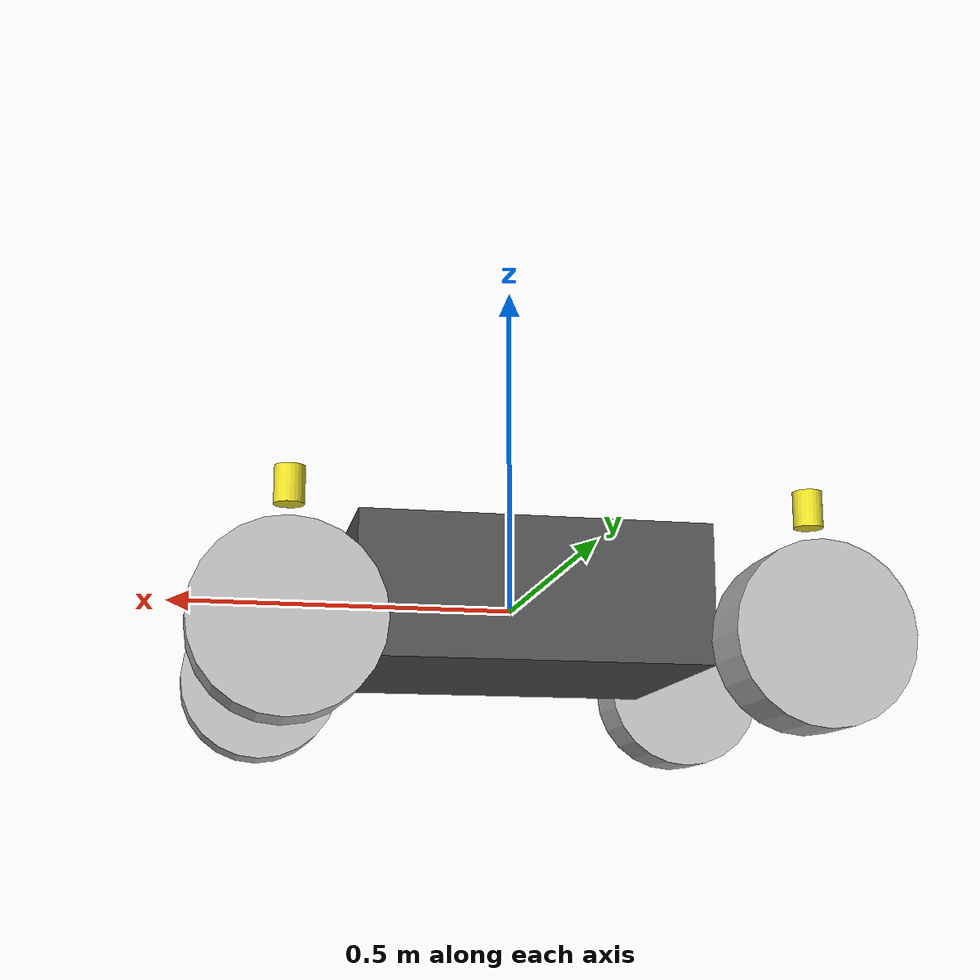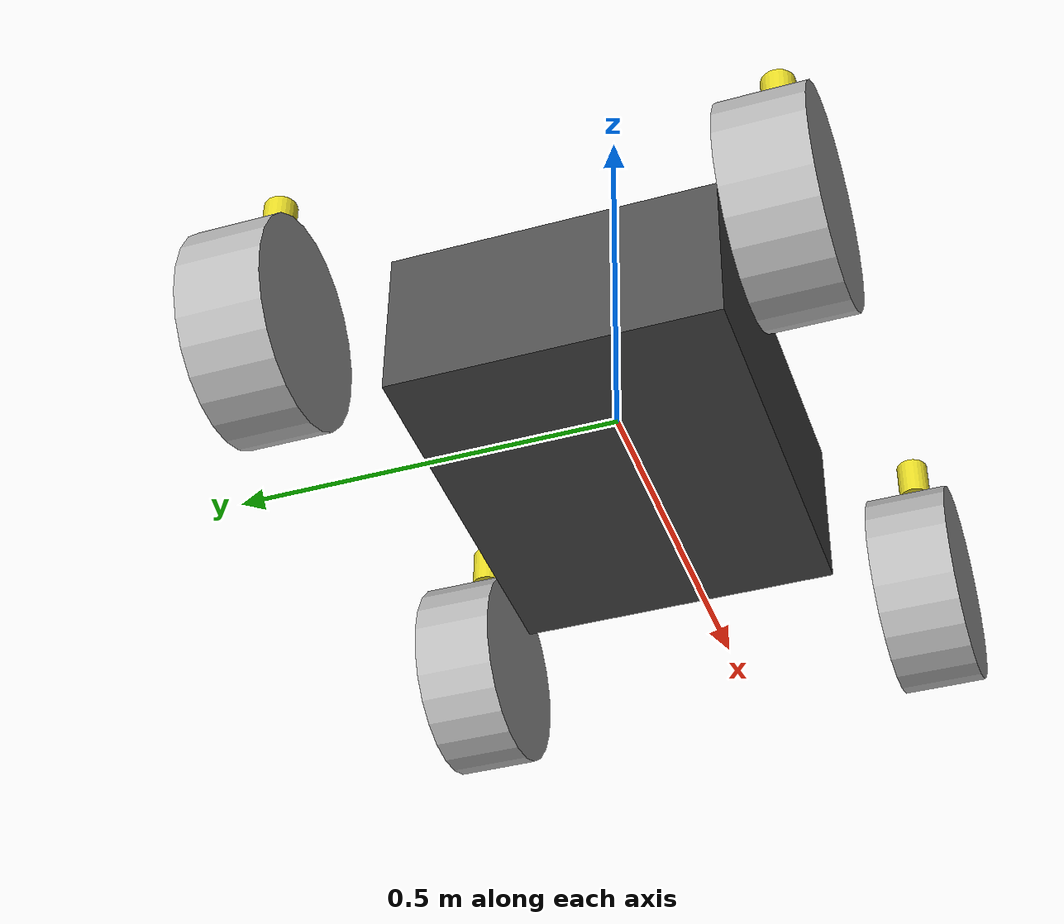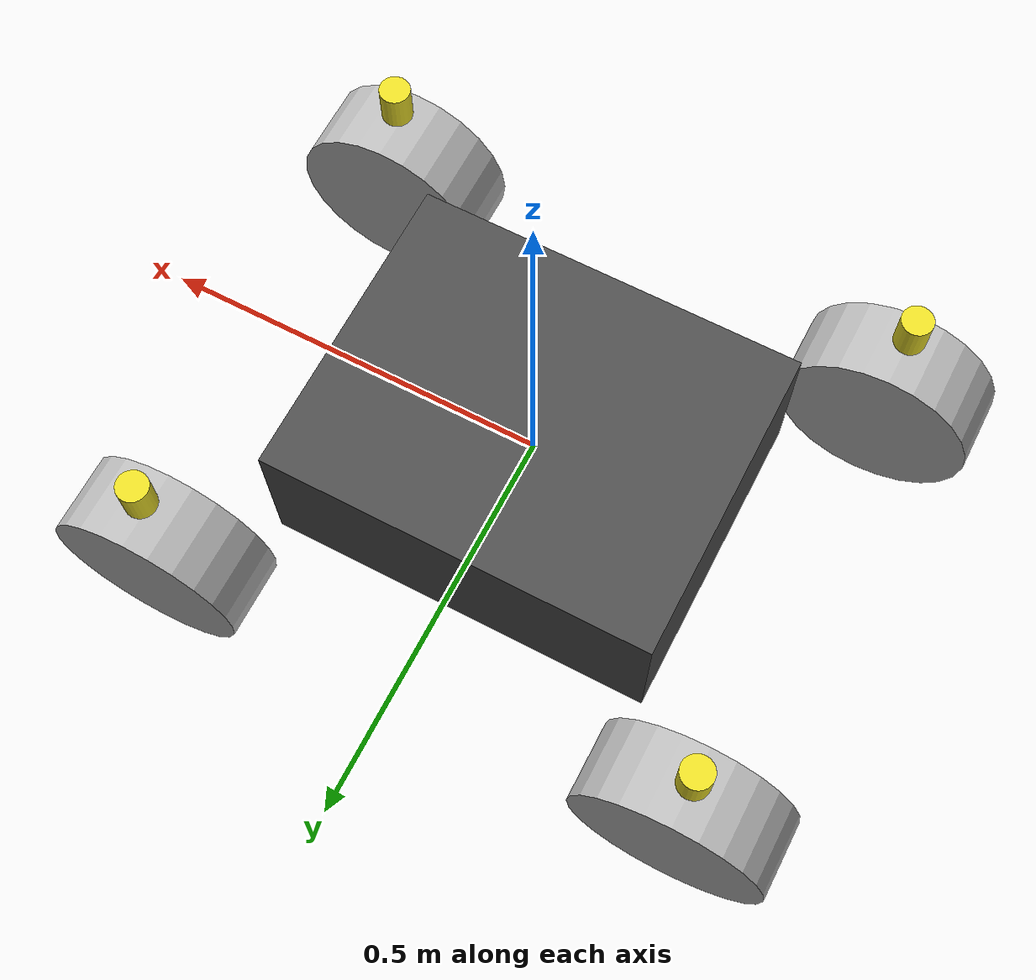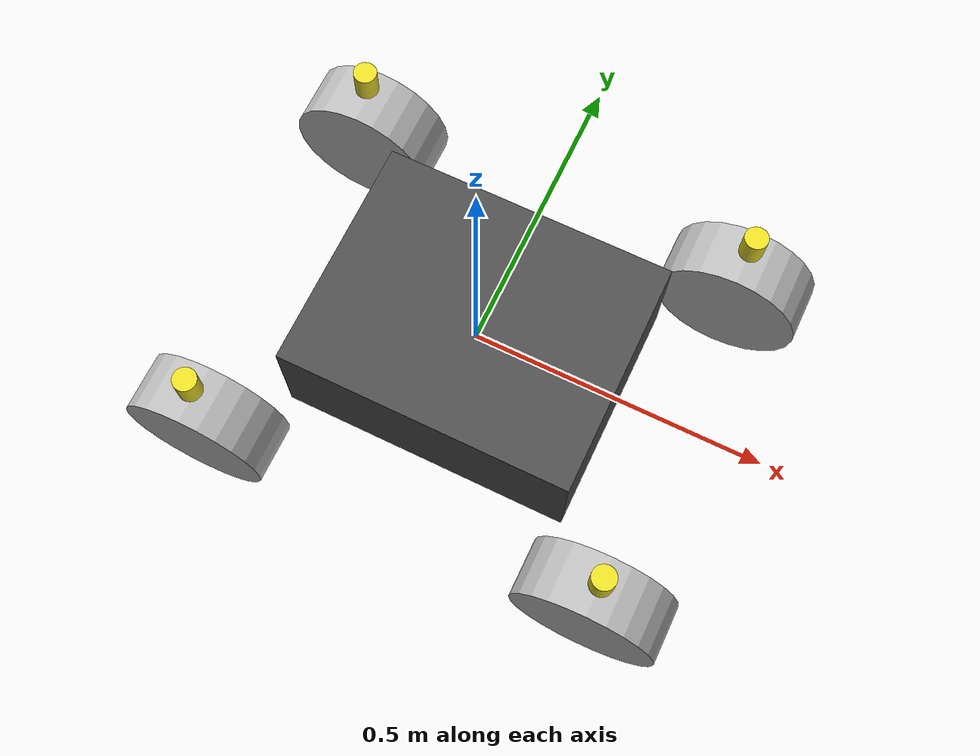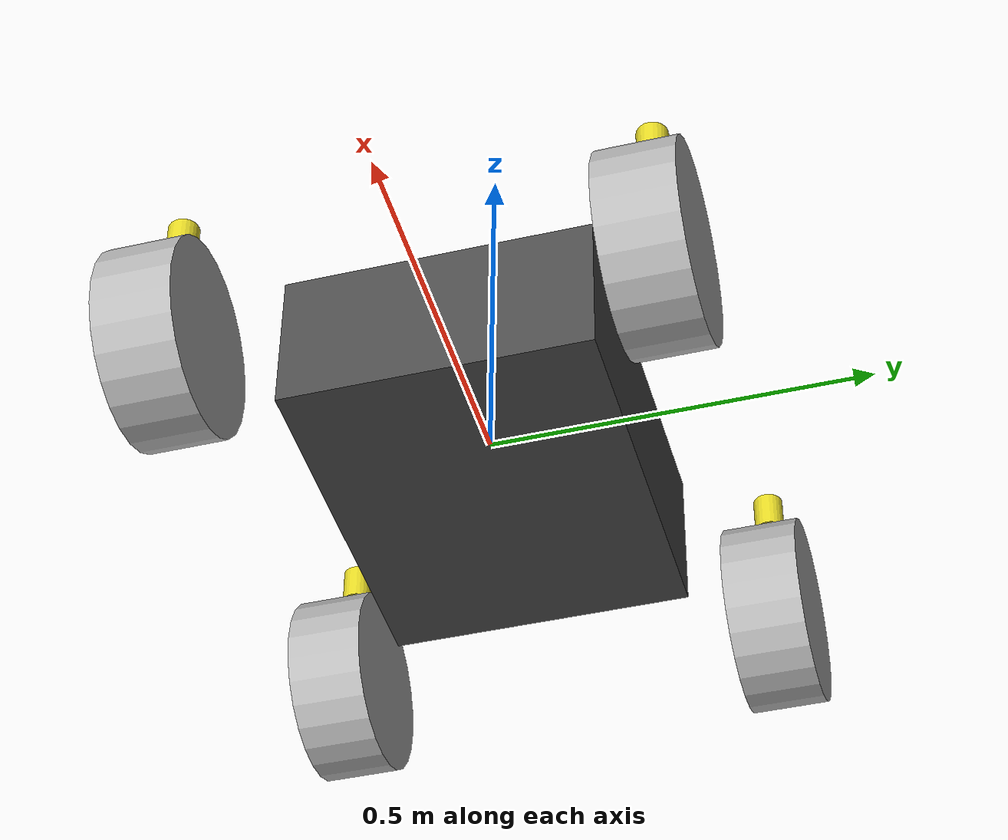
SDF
<sdf version='1.7'>
  <model name='jet_boat_proxy'>
    <link name='base_link'>
      <inertial>
        <pose>0 0 0 0 -0 0</pose>
        <mass>0.5</mass>
        <inertia>
          <ixx>0.00833333</ixx>
          <ixy>0</ixy>
          <ixz>0</ixz>
          <iyy>0.0120833</iyy>
          <iyz>0</iyz>
          <izz>0.0170833</izz>
        </inertia>
      </inertial>
      <collision name='base_link_collision'>
        <pose>0 0 0 0 -0 0</pose>
        <geometry>
          <box>
            <size>0.5 0.4 0.2</size>
          </box>
        </geometry>
        <surface>
          <friction>
            <ode>
              <mu2>1</mu2>
              <fdir1>1 0 0</fdir1>
              <mu1>1.0</mu1>
            </ode>
          </friction>
          <contact>
            <ode>
              <kp>1e+15</kp>
              <kd>1e+13</kd>
            </ode>
          </contact>
        </surface>
      </collision>
      <visual name='base_link_visual'>
        <pose>0 0 0 0 -0 0</pose>
        <geometry>
          <box>
            <size>0.5 0.4 0.2</size>
          </box>
        </geometry>
        <material>
          <script>
            <name>Gazebo/DarkGray</name>
            <uri>file://media/materials/scripts/gazebo.material</uri>
          </script>
        </material>
      </visual>
      <gravity>1</gravity>
      <velocity_decay/>
    </link>
    <joint name='back_left_steer_joint' type='revolute'>
      <pose relative_to='base_link'>-0.35 0.3 0.1 0 -0 0</pose>
      <parent>base_link</parent>
      <child>back_left_steer_link</child>
      <axis>
        <xyz>0 0 1</xyz>
        <limit>
          <lower>-0.785398</lower>
          <upper>0.785398</upper>
          <effort>100</effort>
          <velocity>0.5</velocity>
        </limit>
        <dynamics>
          <damping>0.01</damping>
          <friction>0.001</friction>
          <spring_reference>0</spring_reference>
          <spring_stiffness>0</spring_stiffness>
        </dynamics>
      </axis>
      <physics>
        <ode>
          <limit>
            <cfm>0</cfm>
            <erp>0.2</erp>
          </limit>
        </ode>
      </physics>
    </joint>
    <link name='back_left_steer_link'>
      <pose relative_to='back_left_steer_joint'>0 0 0 0 -0 0</pose>
      <inertial>
        <pose>0 0 0 0 -0 0</pose>
        <mass>0.1</mass>
        <inertia>
          <ixx>3.08333e-05</ixx>
          <ixy>0</ixy>
          <ixz>0</ixz>
          <iyy>3.08333e-05</iyy>
          <iyz>0</iyz>
          <izz>2e-05</izz>
        </inertia>
      </inertial>
      <collision name='back_left_steer_link_collision'>
        <pose>0 0 0 0 -0 0</pose>
        <geometry>
          <cylinder>
            <length>0.05</length>
            <radius>0.02</radius>
          </cylinder>
        </geometry>
        <surface>
          <friction>
            <ode>
              <mu2>1</mu2>
              <fdir1>1 0 0</fdir1>
              <mu1>1.0</mu1>
            </ode>
          </friction>
          <contact>
            <ode>
              <kp>1e+15</kp>
              <kd>1e+13</kd>
            </ode>
          </contact>
        </surface>
      </collision>
      <visual name='back_left_steer_link_visual'>
        <pose>0 0 0 0 -0 0</pose>
        <geometry>
          <cylinder>
            <length>0.05</length>
            <radius>0.02</radius>
          </cylinder>
        </geometry>
        <material>
          <script>
            <name>Gazebo/Yellow</name>
            <uri>file://media/materials/scripts/gazebo.material</uri>
          </script>
        </material>
      </visual>
      <gravity>1</gravity>
      <velocity_decay/>
    </link>
    <joint name='back_left_wheel_joint' type='revolute'>
      <pose relative_to='back_left_steer_link'>0 0 -0.175 -1.5708 0 0</pose>
      <parent>back_left_steer_link</parent>
      <child>back_left_wheel_link</child>
      <axis>
        <xyz>0 0 1</xyz>
        <limit>
          <lower>-1e+16</lower>
          <upper>1e+16</upper>
        </limit>
        <dynamics>
          <damping>0.01</damping>
          <friction>0.001</friction>
          <spring_reference>0</spring_reference>
          <spring_stiffness>0</spring_stiffness>
        </dynamics>
      </axis>
      <physics>
        <ode>
          <limit>
            <cfm>0</cfm>
            <erp>0.2</erp>
          </limit>
        </ode>
      </physics>
    </joint>
    <link name='back_left_wheel_link'>
      <pose relative_to='back_left_wheel_joint'>0 0 0 0 -0 0</pose>
      <inertial>
        <pose>0 0 0 0 -0 0</pose>
        <mass>0.1</mass>
        <inertia>
          <ixx>0.000473958</ixx>
          <ixy>0</ixy>
          <ixz>0</ixz>
          <iyy>0.000473958</iyy>
          <iyz>0</iyz>
          <izz>0.00078125</izz>
        </inertia>
      </inertial>
      <collision name='back_left_wheel_link_collision'>
        <pose>0 0 0 0 -0 0</pose>
        <geometry>
          <cylinder>
            <length>0.1</length>
            <radius>0.125</radius>
          </cylinder>
        </geometry>
      </collision>
      <visual name='back_left_wheel_link_visual'>
        <pose>0 0 0 0 -0 0</pose>
        <geometry>
          <cylinder>
            <length>0.1</length>
            <radius>0.125</radius>
          </cylinder>
        </geometry>
      </visual>
    </link>
    <joint name='back_right_steer_joint' type='revolute'>
      <pose relative_to='base_link'>-0.35 -0.3 0.1 0 -0 0</pose>
      <parent>base_link</parent>
      <child>back_right_steer_link</child>
      <axis>
        <xyz>0 0 1</xyz>
        <limit>
          <lower>-0.785398</lower>
          <upper>0.785398</upper>
          <effort>100</effort>
          <velocity>0.5</velocity>
        </limit>
        <dynamics>
          <damping>0.01</damping>
          <friction>0.001</friction>
          <spring_reference>0</spring_reference>
          <spring_stiffness>0</spring_stiffness>
        </dynamics>
      </axis>
      <physics>
        <ode>
          <limit>
            <cfm>0</cfm>
            <erp>0.2</erp>
          </limit>
        </ode>
      </physics>
    </joint>
    <link name='back_right_steer_link'>
      <pose relative_to='back_right_steer_joint'>0 0 0 0 -0 0</pose>
      <inertial>
        <pose>0 0 0 0 -0 0</pose>
        <mass>0.1</mass>
        <inertia>
          <ixx>3.08333e-05</ixx>
          <ixy>0</ixy>
          <ixz>0</ixz>
          <iyy>3.08333e-05</iyy>
          <iyz>0</iyz>
          <izz>2e-05</izz>
        </inertia>
      </inertial>
      <collision name='back_right_steer_link_collision'>
        <pose>0 0 0 0 -0 0</pose>
        <geometry>
          <cylinder>
            <length>0.05</length>
            <radius>0.02</radius>
          </cylinder>
        </geometry>
        <surface>
          <friction>
            <ode>
              <mu2>1</mu2>
              <fdir1>1 0 0</fdir1>
              <mu1>1.0</mu1>
            </ode>
          </friction>
          <contact>
            <ode>
              <kp>1e+15</kp>
              <kd>1e+13</kd>
            </ode>
          </contact>
        </surface>
      </collision>
      <visual name='back_right_steer_link_visual'>
        <pose>0 0 0 0 -0 0</pose>
        <geometry>
          <cylinder>
            <length>0.05</length>
            <radius>0.02</radius>
          </cylinder>
        </geometry>
        <material>
          <script>
            <name>Gazebo/Yellow</name>
            <uri>file://media/materials/scripts/gazebo.material</uri>
          </script>
        </material>
      </visual>
      <gravity>1</gravity>
      <velocity_decay/>
    </link>
    <joint name='back_right_wheel_joint' type='revolute'>
      <pose relative_to='back_right_steer_link'>0 0 -0.175 -1.5708 0 0</pose>
      <parent>back_right_steer_link</parent>
      <child>back_right_wheel_link</child>
      <axis>
        <xyz>0 0 1</xyz>
        <limit>
          <lower>-1e+16</lower>
          <upper>1e+16</upper>
        </limit>
        <dynamics>
          <damping>0.01</damping>
          <friction>0.001</friction>
          <spring_reference>0</spring_reference>
          <spring_stiffness>0</spring_stiffness>
        </dynamics>
      </axis>
      <physics>
        <ode>
          <limit>
            <cfm>0</cfm>
            <erp>0.2</erp>
          </limit>
        </ode>
      </physics>
    </joint>
    <link name='back_right_wheel_link'>
      <pose relative_to='back_right_wheel_joint'>0 0 0 0 -0 0</pose>
      <inertial>
        <pose>0 0 0 0 -0 0</pose>
        <mass>0.1</mass>
        <inertia>
          <ixx>0.000473958</ixx>
          <ixy>0</ixy>
          <ixz>0</ixz>
          <iyy>0.000473958</iyy>
          <iyz>0</iyz>
          <izz>0.00078125</izz>
        </inertia>
      </inertial>
      <collision name='back_right_wheel_link_collision'>
        <pose>0 0 0 0 -0 0</pose>
        <geometry>
          <cylinder>
            <length>0.1</length>
            <radius>0.125</radius>
          </cylinder>
        </geometry>
      </collision>
      <visual name='back_right_wheel_link_visual'>
        <pose>0 0 0 0 -0 0</pose>
        <geometry>
          <cylinder>
            <length>0.1</length>
            <radius>0.125</radius>
          </cylinder>
        </geometry>
      </visual>
    </link>
    <joint name='front_left_steer_joint' type='revolute'>
      <pose relative_to='base_link'>0.35 0.3 0.1 0 -0 0</pose>
      <parent>base_link</parent>
      <child>front_left_steer_link</child>
      <axis>
        <xyz>0 0 1</xyz>
        <limit>
          <lower>0</lower>
          <upper>3.14159</upper>
          <effort>100</effort>
          <velocity>0.5</velocity>
        </limit>
        <dynamics>
          <damping>0.01</damping>
          <friction>0.001</friction>
          <spring_reference>0</spring_reference>
          <spring_stiffness>0</spring_stiffness>
        </dynamics>
      </axis>
      <physics>
        <ode>
          <limit>
            <cfm>0</cfm>
            <erp>0.2</erp>
          </limit>
        </ode>
      </physics>
    </joint>
    <link name='front_left_steer_link'>
      <pose relative_to='front_left_steer_joint'>0 0 0 0 -0 0</pose>
      <inertial>
        <pose>0 0 0 0 -0 0</pose>
        <mass>0.1</mass>
        <inertia>
          <ixx>3.08333e-05</ixx>
          <ixy>0</ixy>
          <ixz>0</ixz>
          <iyy>3.08333e-05</iyy>
          <iyz>0</iyz>
          <izz>2e-05</izz>
        </inertia>
      </inertial>
      <collision name='front_left_steer_link_collision'>
        <pose>0 0 0 0 -0 0</pose>
        <geometry>
          <cylinder>
            <length>0.05</length>
            <radius>0.02</radius>
          </cylinder>
        </geometry>
        <surface>
          <friction>
            <ode>
              <mu2>1</mu2>
              <fdir1>1 0 0</fdir1>
              <mu1>1.0</mu1>
            </ode>
          </friction>
          <contact>
            <ode>
              <kp>1e+15</kp>
              <kd>1e+13</kd>
            </ode>
          </contact>
        </surface>
      </collision>
      <visual name='front_left_steer_link_visual'>
        <pose>0 0 0 0 -0 0</pose>
        <geometry>
          <cylinder>
            <length>0.05</length>
            <radius>0.02</radius>
          </cylinder>
        </geometry>
        <material>
          <script>
            <name>Gazebo/Yellow</name>
            <uri>file://media/materials/scripts/gazebo.material</uri>
          </script>
        </material>
      </visual>
      <gravity>1</gravity>
      <velocity_decay/>
    </link>
    <joint name='front_left_wheel_joint' type='revolute'>
      <pose relative_to='front_left_steer_link'>0 0 -0.175 -1.5708 0 0</pose>
      <parent>front_left_steer_link</parent>
      <child>front_left_wheel_link</child>
      <axis>
        <xyz>0 0 1</xyz>
        <limit>
          <lower>-1e+16</lower>
          <upper>1e+16</upper>
        </limit>
        <dynamics>
          <damping>0.01</damping>
          <friction>0.001</friction>
          <spring_reference>0</spring_reference>
          <spring_stiffness>0</spring_stiffness>
        </dynamics>
      </axis>
      <physics>
        <ode>
          <limit>
            <cfm>0</cfm>
            <erp>0.2</erp>
          </limit>
        </ode>
      </physics>
    </joint>
    <link name='front_left_wheel_link'>
      <pose relative_to='front_left_wheel_joint'>0 0 0 0 -0 0</pose>
      <inertial>
        <pose>0 0 0 0 -0 0</pose>
        <mass>0.1</mass>
        <inertia>
          <ixx>0.000473958</ixx>
          <ixy>0</ixy>
          <ixz>0</ixz>
          <iyy>0.000473958</iyy>
          <iyz>0</iyz>
          <izz>0.00078125</izz>
        </inertia>
      </inertial>
      <collision name='front_left_wheel_link_collision'>
        <pose>0 0 0 0 -0 0</pose>
        <geometry>
          <cylinder>
            <length>0.1</length>
            <radius>0.125</radius>
          </cylinder>
        </geometry>
      </collision>
      <visual name='front_left_wheel_link_visual'>
        <pose>0 0 0 0 -0 0</pose>
        <geometry>
          <cylinder>
            <length>0.1</length>
            <radius>0.125</radius>
          </cylinder>
        </geometry>
      </visual>
    </link>
    <joint name='front_right_steer_joint' type='revolute'>
      <pose relative_to='base_link'>0.35 -0.3 0.1 0 -0 0</pose>
      <parent>base_link</parent>
      <child>front_right_steer_link</child>
      <axis>
        <xyz>0 0 1</xyz>
        <limit>
          <lower>-3.14159</lower>
          <upper>0</upper>
          <effort>100</effort>
          <velocity>0.5</velocity>
        </limit>
        <dynamics>
          <damping>0.01</damping>
          <friction>0.001</friction>
          <spring_reference>0</spring_reference>
          <spring_stiffness>0</spring_stiffness>
        </dynamics>
      </axis>
      <physics>
        <ode>
          <limit>
            <cfm>0</cfm>
            <erp>0.2</erp>
          </limit>
        </ode>
      </physics>
    </joint>
    <link name='front_right_steer_link'>
      <pose relative_to='front_right_steer_joint'>0 0 0 0 -0 0</pose>
      <inertial>
        <pose>0 0 0 0 -0 0</pose>
        <mass>0.1</mass>
        <inertia>
          <ixx>3.08333e-05</ixx>
          <ixy>0</ixy>
          <ixz>0</ixz>
          <iyy>3.08333e-05</iyy>
          <iyz>0</iyz>
          <izz>2e-05</izz>
        </inertia>
      </inertial>
      <collision name='front_right_steer_link_collision'>
        <pose>0 0 0 0 -0 0</pose>
        <geometry>
          <cylinder>
            <length>0.05</length>
            <radius>0.02</radius>
          </cylinder>
        </geometry>
        <surface>
          <friction>
            <ode>
              <mu2>1</mu2>
              <fdir1>1 0 0</fdir1>
              <mu1>1.0</mu1>
            </ode>
          </friction>
          <contact>
            <ode>
              <kp>1e+15</kp>
              <kd>1e+13</kd>
            </ode>
          </contact>
        </surface>
      </collision>
      <visual name='front_right_steer_link_visual'>
        <pose>0 0 0 0 -0 0</pose>
        <geometry>
          <cylinder>
            <length>0.05</length>
            <radius>0.02</radius>
          </cylinder>
        </geometry>
        <material>
          <script>
            <name>Gazebo/Yellow</name>
            <uri>file://media/materials/scripts/gazebo.material</uri>
          </script>
        </material>
      </visual>
      <gravity>1</gravity>
      <velocity_decay/>
    </link>
    <joint name='front_right_wheel_joint' type='revolute'>
      <pose relative_to='front_right_steer_link'>0 0 -0.175 -1.5708 0 0</pose>
      <parent>front_right_steer_link</parent>
      <child>front_right_wheel_link</child>
      <axis>
        <xyz>0 0 1</xyz>
        <limit>
          <lower>-1e+16</lower>
          <upper>1e+16</upper>
        </limit>
        <dynamics>
          <damping>0.01</damping>
          <friction>0.001</friction>
          <spring_reference>0</spring_reference>
          <spring_stiffness>0</spring_stiffness>
        </dynamics>
      </axis>
      <physics>
        <ode>
          <limit>
            <cfm>0</cfm>
            <erp>0.2</erp>
          </limit>
        </ode>
      </physics>
    </joint>
    <link name='front_right_wheel_link'>
      <pose relative_to='front_right_wheel_joint'>0 0 0 0 -0 0</pose>
      <inertial>
        <pose>0 0 0 0 -0 0</pose>
        <mass>0.1</mass>
        <inertia>
          <ixx>0.000473958</ixx>
          <ixy>0</ixy>
          <ixz>0</ixz>
          <iyy>0.000473958</iyy>
          <iyz>0</iyz>
          <izz>0.00078125</izz>
        </inertia>
      </inertial>
      <collision name='front_right_wheel_link_collision'>
        <pose>0 0 0 0 -0 0</pose>
        <geometry>
          <cylinder>
            <length>0.1</length>
            <radius>0.125</radius>
          </cylinder>
        </geometry>
      </collision>
      <visual name='front_right_wheel_link_visual'>
        <pose>0 0 0 0 -0 0</pose>
        <geometry>
          <cylinder>
            <length>0.1</length>
            <radius>0.125</radius>
          </cylinder>
        </geometry>
      </visual>
    </link>
  </model>
</sdf>
